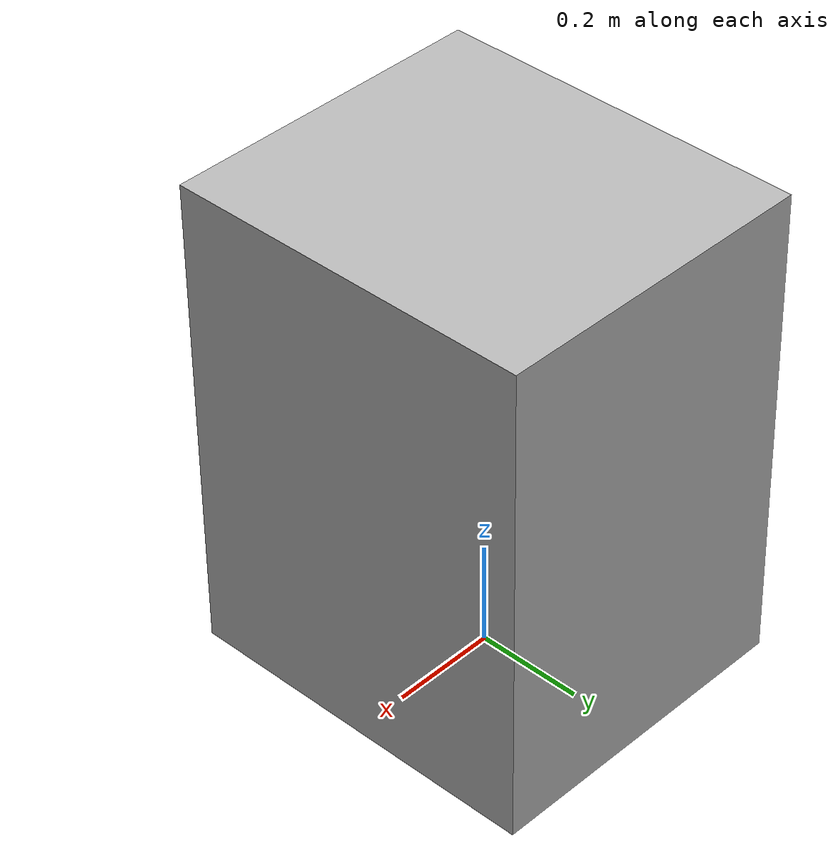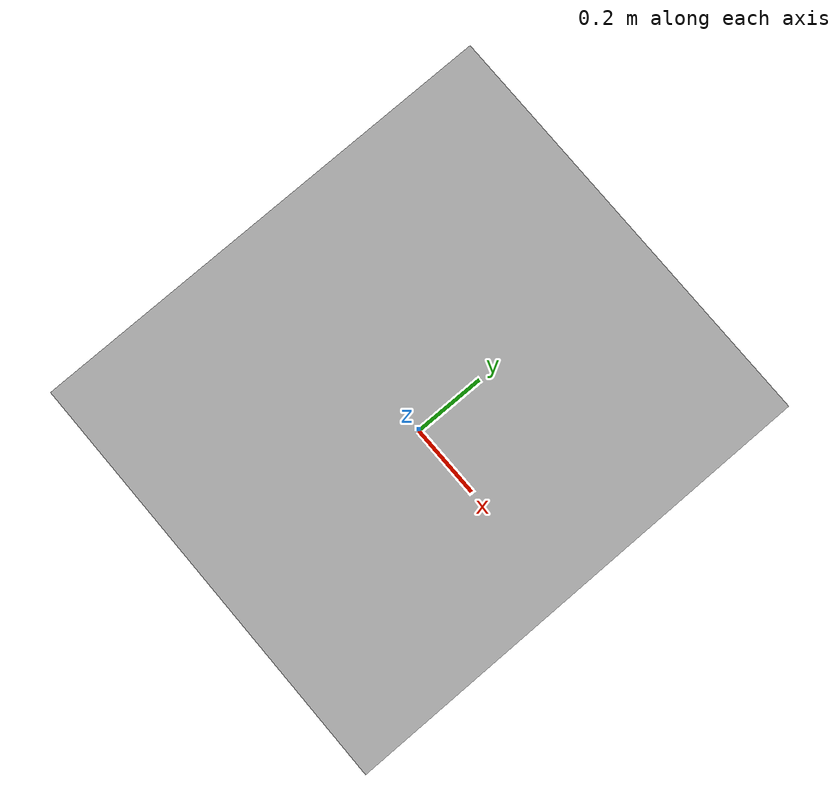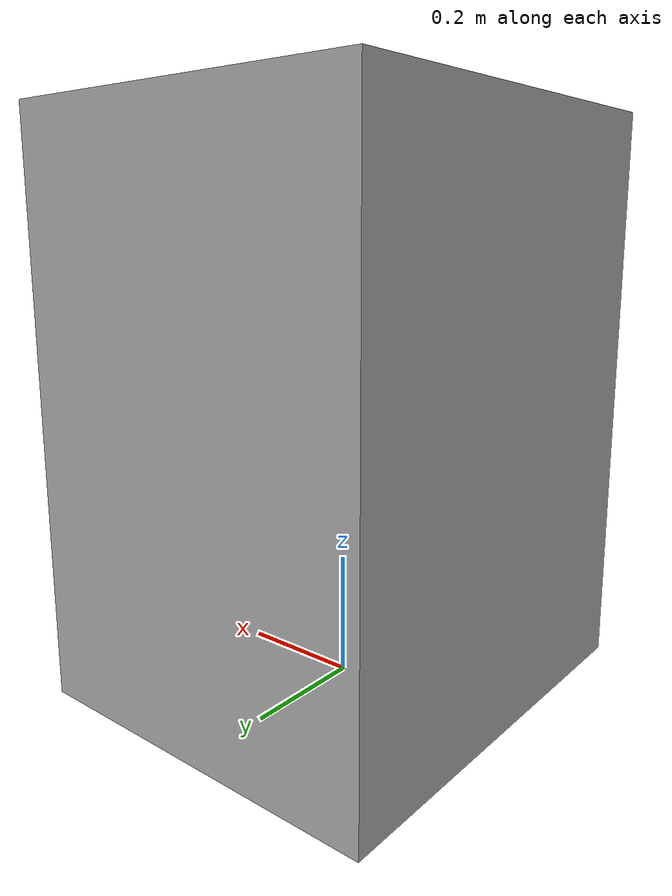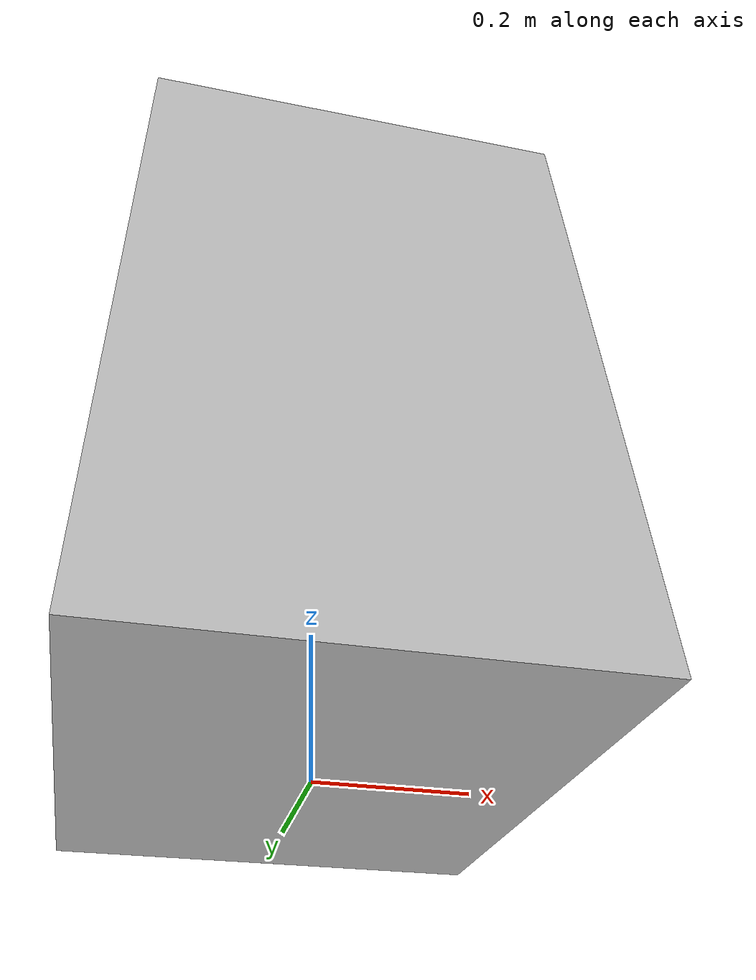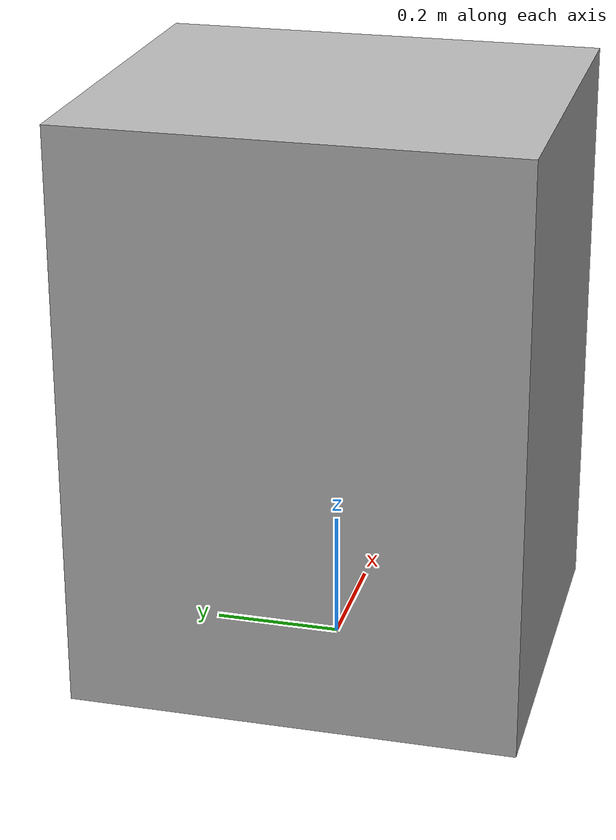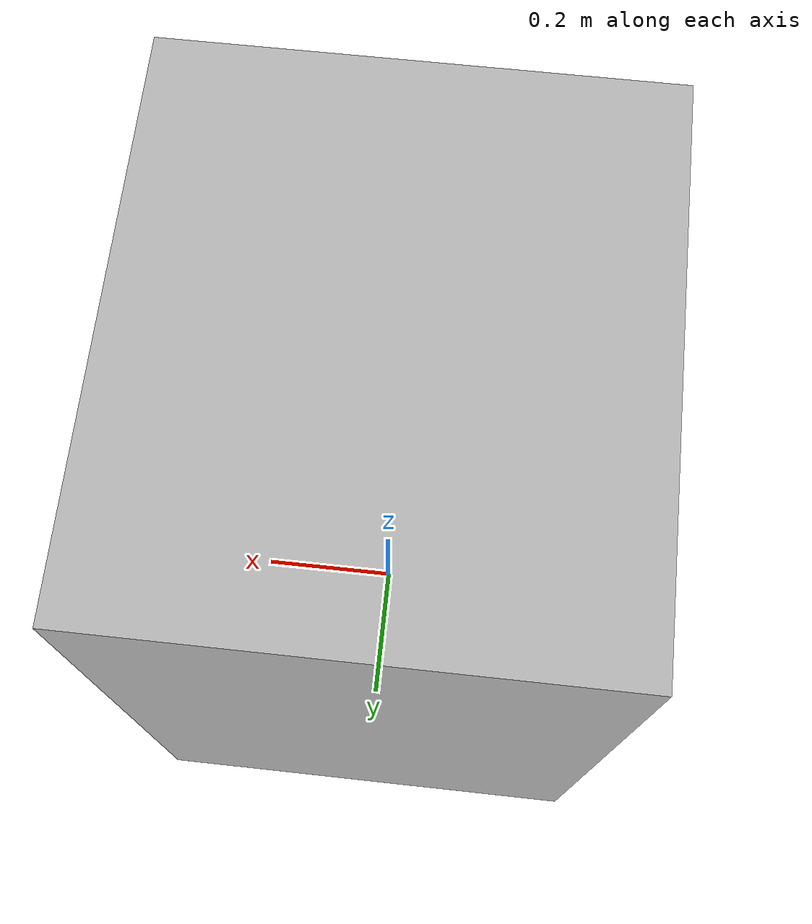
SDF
<?xml version="1.0"?>
<sdf version="1.6">
  <model name="rwc2018/dishwasher">
    <link name="1_link">
      <collision name="1_col">
        <geometry>
          <box>
            <size>0.61 0.69 0.91</size>
          </box>
        </geometry>
      </collision>
      <visual name="1_vis">
        <geometry>
          <box>
            <size>0.61 0.69 0.91</size>
          </box>
        </geometry>
      </visual>
      <pose>0 0 0.455 0 0 0</pose>
    </link>
    <link name="on_top_of">
      <virtual_volume name="on_top_of_vv">
        <geometry>
          <box>
            <size>0.59 0.63 0.25</size>
          </box>
        </geometry>
        <pose>0.0 0.0 1.055 0 0 0</pose>
      </virtual_volume>
    </link>
    <link name="in_front_of">
      <virtual_volume name="in_front_of_vv">
        <geometry>
          <box>
            <size>0.2 0.49 0.01</size>
          </box>
        </geometry>
        <pose>0.805 0.0 0.005 0 0 0</pose>
      </virtual_volume>
    </link>
    <link name="to_the_side_of">
      <virtual_volume name="to_the_side_of_vv">
        <geometry>
          <box>
            <size>0.575 0.3 0.01</size>
          </box>
        </geometry>
        <pose>0.9125 -0.85 0.005 0 0 0</pose>
      </virtual_volume>
    </link>
    <static>true</static>
  </model>
</sdf>
